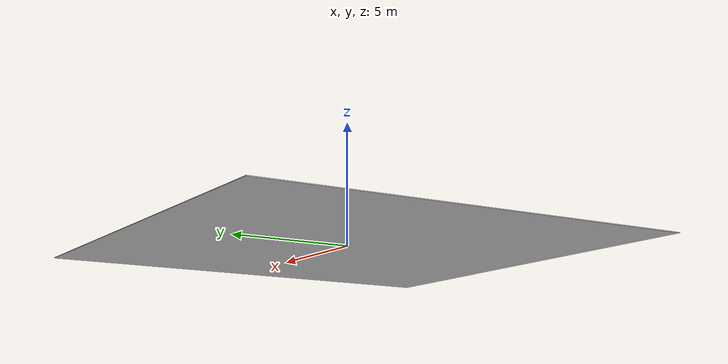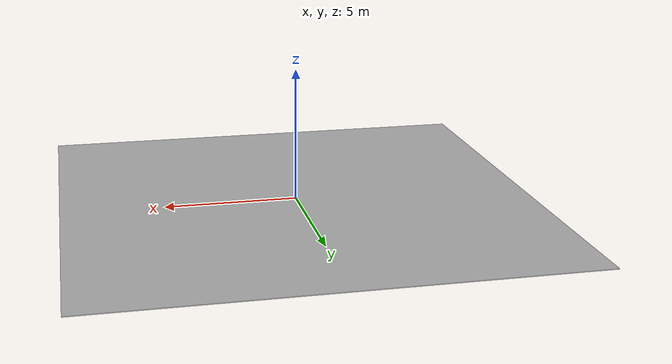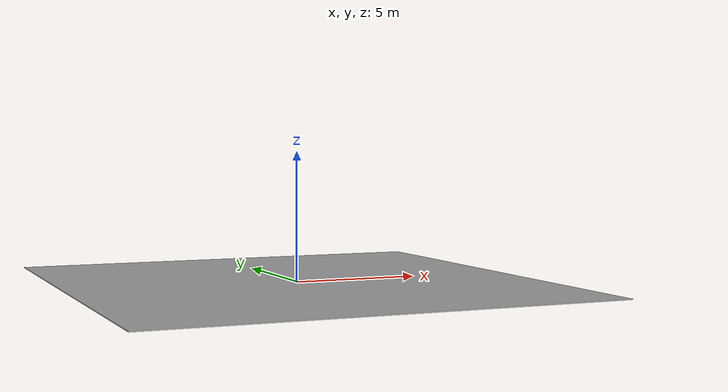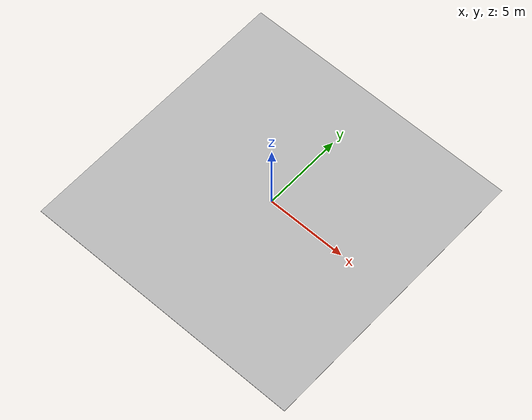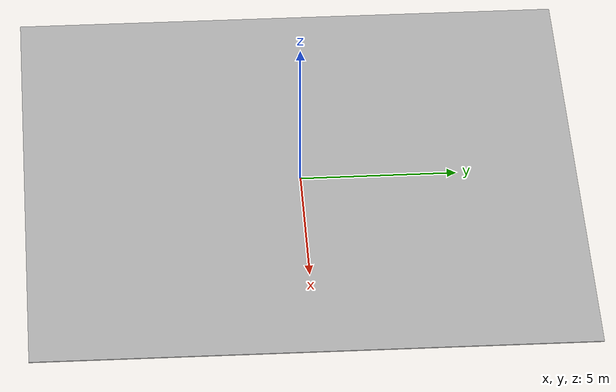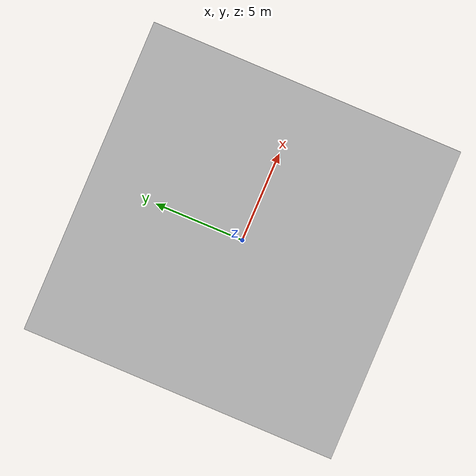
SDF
<?xml version="1.0" ?>
<sdf version="1.5">
  <model name="concrete_ground">
    <static>true</static>
    <link name="link">
      <pose>0 0 0.01 0 0 0</pose>
      <collision name="collision">
        <geometry>
          <box>
            <size>17.7 17.7 0.03</size>
          </box>
        </geometry>
      </collision>
      <visual name="visual">
        <cast_shadows>false</cast_shadows>
        <geometry>
          <box>
            <size>17.7 17.7 0.03</size>
          </box>
        </geometry>
        <material>
          <script>
            <uri>model://concrete_ground/materials/scripts</uri>
            <uri>model://concrete_ground/materials/textures</uri>
            <name>vrc/concrete_ground</name>
          </script>
        </material>
      </visual>
    </link>
  </model>
</sdf>
